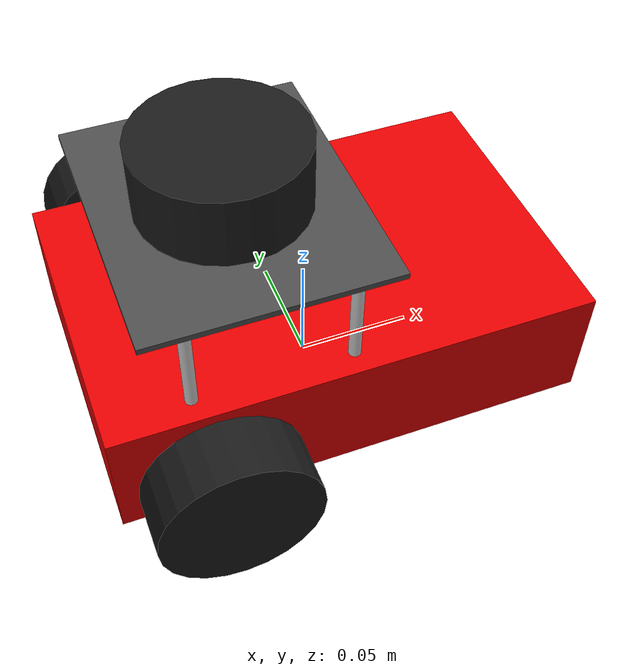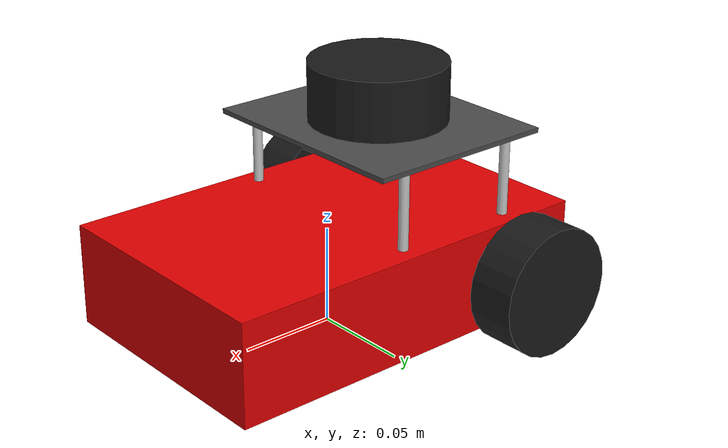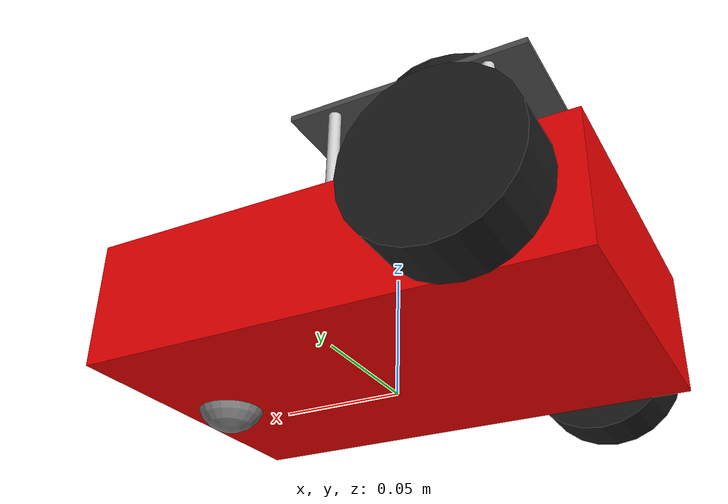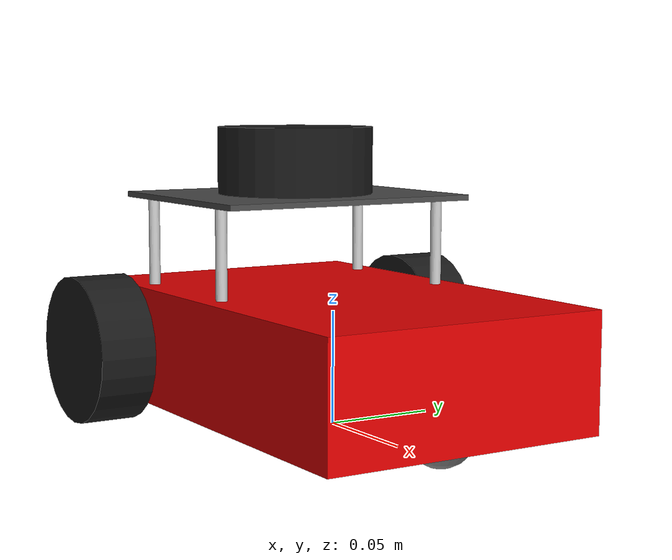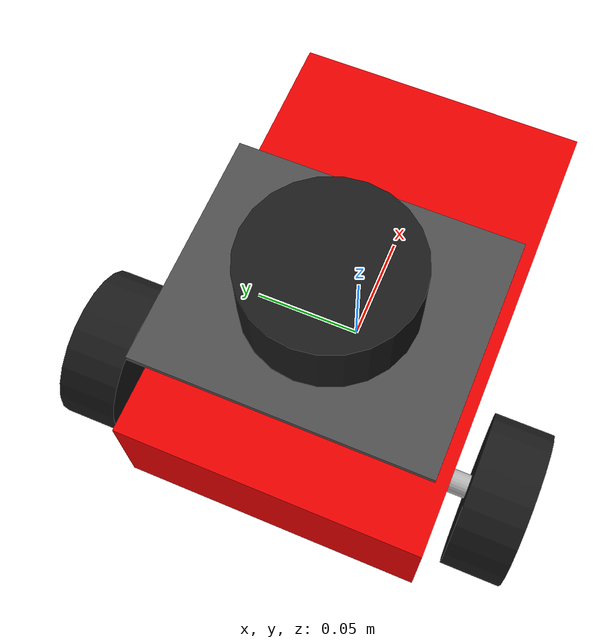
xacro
<?xml version="1.0"?>
<robot xmlns:xacro="http://ros.org/wiki/xacro" name="my_robot" >

  <xacro:include filename="$(find my_robot)/description/urdf/robot_diff.urdf"/>
  <xacro:include filename="$(find my_robot)/description/urdf/lidar.urdf"/>
  <xacro:include filename="$(find my_robot)/description/urdf/ros2_control.urdf"/>

</robot>

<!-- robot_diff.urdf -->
<robot name="diff_robot">

  <!-- === BASE LINK === -->
  <link name="base_link">
    <visual>
      <origin xyz="0 0 0.0325" rpy="0 0 0"/>
      <geometry>
        <box size="0.20 0.13 0.052"/>
      </geometry>
      <material name="red">
        <color rgba="0.9 0.0 0.0 1.0"/>
      </material>
    </visual>

    <collision>
      <origin xyz="0 0 0.0325" rpy="0 0 0"/>
      <geometry>
        <box size="0.20 0.13 0.065"/>
      </geometry>
    </collision>

    <inertial>
      <origin xyz="0 0 0.0325" rpy="0 0 0"/>
      <mass value="2.0"/>
      <inertia ixx="0.01" ixy="0.0" ixz="0.0"
               iyy="0.01" iyz="0.0"
               izz="0.01"/>
    </inertial>
  </link>

  <!-- === LLANTA IZQUIERDA TRASERA === -->
  <link name="left_wheel">
    <visual>
      <origin xyz="0 0 0" rpy="1.5708 0 0"/>
      <geometry>
        <cylinder length="0.025" radius="0.0325"/>
      </geometry>
      <material name="black">
        <color rgba="0.1 0.1 0.1 1.0"/>
      </material>
    </visual>

    <collision>
      <origin xyz="0 0 0" rpy="1.5708 0 0"/>
      <geometry>
        <cylinder length="0.025" radius="0.0325"/>
      </geometry>
    </collision>

    <inertial>
      <origin xyz="0 0 0" rpy="1.5708 0 0"/>
      <mass value="0.2"/>
      <inertia ixx="0.0001" ixy="0.0" ixz="0.0"
               iyy="0.0001" iyz="0.0"
               izz="0.0001"/>
    </inertial>
  </link>

  <!-- === JOINT ENTRE BASE Y LLANTA IZQUIERDA === -->
  <joint name="left_wheel_joint" type="continuous">
    <parent link="base_link"/>
    <child link="left_wheel"/>
    <origin xyz="-0.06 -0.085 0.0325" rpy="0 0 0"/>
    <axis xyz="0 1 0"/>
  </joint>

  <!-- === LLANTA DERECHA TRASERA === -->
  <link name="right_wheel">
    <visual>
      <origin xyz="0 0 0" rpy="1.5708 0 0"/>
      <geometry>
        <cylinder length="0.025" radius="0.0325"/>
      </geometry>
      <material name="black">
        <color rgba="0.1 0.1 0.1 1.0"/>
      </material>
    </visual>

    <collision>
      <origin xyz="0 0 0" rpy="1.5708 0 0"/>
      <geometry>
        <cylinder length="0.025" radius="0.0325"/>
      </geometry>
    </collision>

    <inertial>
      <origin xyz="0 0 0" rpy="1.5708 0 0"/>
      <mass value="0.2"/>
      <inertia ixx="0.0001" ixy="0.0" ixz="0.0"
               iyy="0.0001" iyz="0.0"
               izz="0.0001"/>
    </inertial>
  </link>

  <!-- === JOINT ENTRE BASE Y LLANTA DERECHA === -->
  <joint name="right_wheel_joint" type="continuous">
    <parent link="base_link"/>
    <child link="right_wheel"/>
    <origin xyz="-0.06 0.085 0.0325" rpy="0 0 0"/>
    <axis xyz="0 1 0"/>
  </joint>

  <!-- === EJE IZQUIERDO === -->
  <link name="left_axle">
    <visual>
      <origin xyz="0 0 0" rpy="1.5708 0 0"/>
      <geometry>
        <cylinder length="0.02" radius="0.005"/>
      </geometry>
      <material name="silver">
        <color rgba="0.7 0.7 0.7 1.0"/>
      </material>
    </visual>
  </link>

  <joint name="left_axle_joint" type="fixed">
    <parent link="base_link"/>
    <child link="left_axle"/>
    <origin xyz="-0.06 -0.065 0.0325" rpy="0 0 0"/>
  </joint>

  <!-- === EJE DERECHO === -->
  <link name="right_axle">
    <visual>
      <origin xyz="0 0 0" rpy="1.5708 0 0"/>
      <geometry>
        <cylinder length="0.02" radius="0.005"/>
      </geometry>
      <material name="silver">
        <color rgba="0.7 0.7 0.7 1.0"/>
      </material>
    </visual>
  </link>

  <joint name="right_axle_joint" type="fixed">
    <parent link="base_link"/>
    <child link="right_axle"/>
    <origin xyz="-0.06 0.065 0.0325" rpy="0 0 0"/>
  </joint>

  <!-- === RUEDA LOCA DELANTERA === -->
  <link name="caster_wheel">
    <visual>
      <origin xyz="0 0 0" rpy="0 0 0"/>
      <geometry>
        <sphere radius="0.015"/>
      </geometry>
      <material name="caster_gray">
        <color rgba="0.5 0.5 0.5 1.0"/>
      </material>
    </visual>

    <collision>
      <origin xyz="0 0 0" rpy="0 0 0"/>
      <geometry>
        <sphere radius="0.02"/>
      </geometry>
    </collision>

    <inertial>
      <origin xyz="0 0 0" rpy="0 0 0"/>
      <mass value="0.05"/>
      <inertia ixx="0.00001" ixy="0.0" ixz="0.0"
               iyy="0.00001" iyz="0.0"
               izz="0.00001"/>
    </inertial>
  </link>

  <joint name="caster_joint" type="fixed">
    <parent link="base_link"/>
    <child link="caster_wheel"/>
    <origin xyz="0.08 0 0.0125" rpy="0 0 0"/>
  </joint>

  <!-- === SEPARADORES TRASEROS (SOPORTE DEL PISO SUPERIOR / LIDAR) === -->

  <!-- Trasero izquierdo -->
  <link name="rear_left_post">
    <visual>
      <origin xyz="0 0 0.02" rpy="0 0 0"/>
      <geometry>
        <cylinder length="0.04" radius="0.0025"/>
      </geometry>
      <material name="silver">
        <color rgba="0.8 0.8 0.8 1.0"/>
      </material>
    </visual>
  </link>

  <joint name="rear_left_post_joint" type="fixed">
    <parent link="base_link"/>
    <child link="rear_left_post"/>
    <origin xyz="-0.065 -0.055 0.0585" rpy="0 0 0"/>
  </joint>

  <!-- Trasero derecho -->
  <link name="rear_right_post">
    <visual>
      <origin xyz="0 0 0.02" rpy="0 0 0"/>
      <geometry>
        <cylinder length="0.04" radius="0.0025"/>
      </geometry>
      <material name="silver">
        <color rgba="0.8 0.8 0.8 1.0"/>
      </material>
    </visual>
  </link>

  <joint name="rear_right_post_joint" type="fixed">
    <parent link="base_link"/>
    <child link="rear_right_post"/>
    <origin xyz="-0.065 0.055 0.0585" rpy="0 0 0"/>
  </joint>

  <!-- Delantero izquierdo -->
  <link name="front_left_post">
    <visual>
      <origin xyz="0 0 0.02" rpy="0 0 0"/>
      <geometry>
        <cylinder length="0.04" radius="0.0025"/>
      </geometry>
      <material name="silver">
        <color rgba="0.8 0.8 0.8 1.0"/>
      </material>
    </visual>
  </link>

  <joint name="front_left_post_joint" type="fixed">
    <parent link="base_link"/>
    <child link="front_left_post"/>
    <origin xyz="0.0 -0.055 0.0585" rpy="0 0 0"/>
  </joint>

  <!-- Delantero derecho -->
  <link name="front_right_post">
    <visual>
      <origin xyz="0 0 0.02" rpy="0 0 0"/>
      <geometry>
        <cylinder length="0.04" radius="0.0025"/>
      </geometry>
      <material name="silver">
        <color rgba="0.8 0.8 0.8 1.0"/>
      </material>
    </visual>
  </link>

  <joint name="front_right_post_joint" type="fixed">
    <parent link="base_link"/>
    <child link="front_right_post"/>
    <origin xyz="0.0 0.055 0.0585" rpy="0 0 0"/>
  </joint>

  <!-- === PISO SUPERIOR === -->
  <link name="upper_plate">
    <visual>
      <origin xyz="0 0 0" rpy="0 0 0"/>
      <geometry>
        <box size="0.10 0.12 0.0025"/>
      </geometry>
      <material name="dark_grey">
        <color rgba="0.3 0.3 0.3 1.0"/>
      </material>
    </visual>

    <collision>
      <origin xyz="0 0 0" rpy="0 0 0"/>
      <geometry>
        <box size="0.10 0.12 0.0025"/>
      </geometry>
    </collision>

    <inertial>
      <origin xyz="0 0 0" rpy="0 0 0"/>
      <mass value="0.05"/>
      <inertia ixx="0.00005" ixy="0.0" ixz="0.0"
               iyy="0.00005" iyz="0.0"
               izz="0.00005"/>
    </inertial>
  </link>

  <joint name="upper_plate_joint" type="fixed">
    <parent link="base_link"/>
    <child link="upper_plate"/>
    <origin xyz="-0.0325 0 0.09875" rpy="0 0 0"/>
  </joint>

</robot>

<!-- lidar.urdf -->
<robot xmlns:xacro="http://www.ros.org/wiki/xacro" >

<!-- === LIDAR === -->
  <link name="lidar_link">
    <visual>
      <origin xyz="0 0 0.015" rpy="0 0 0"/>
      <geometry>
        <cylinder length="0.03" radius="0.035"/>
      </geometry>
      <material name="lidar_black">
        <color rgba="0.1 0.1 0.1 1.0"/>
      </material>
    </visual>

    <collision>
      <origin xyz="0 0 0.015" rpy="0 0 0"/>
      <geometry>
        <cylinder length="0.03" radius="0.035"/>
      </geometry>
    </collision>

    <inertial>
      <origin xyz="0 0 0.015" rpy="0 0 0"/>
      <mass value="0.1"/>
      <inertia ixx="0.0001" ixy="0.0" ixz="0.0"
               iyy="0.0001" iyz="0.0"
               izz="0.0001"/>
    </inertial>
  </link>

  <!-- === JOINT ENTRE PISO SUPERIOR Y LIDAR === -->
  <joint name="lidar_joint" type="fixed">
    <parent link="upper_plate"/>
    <child link="lidar_link"/>
    <origin xyz="0 0 0.00125" rpy="0 0 0"/>
  </joint>
</robot>
